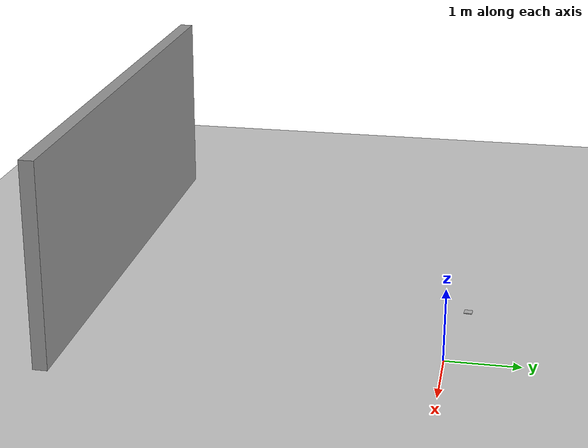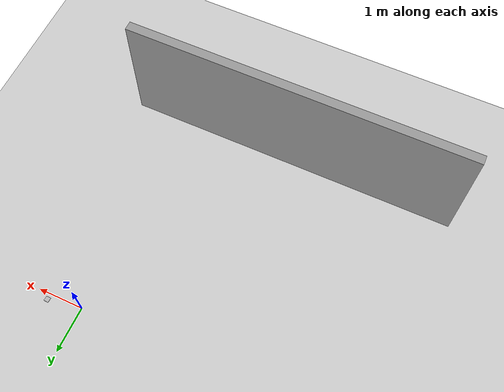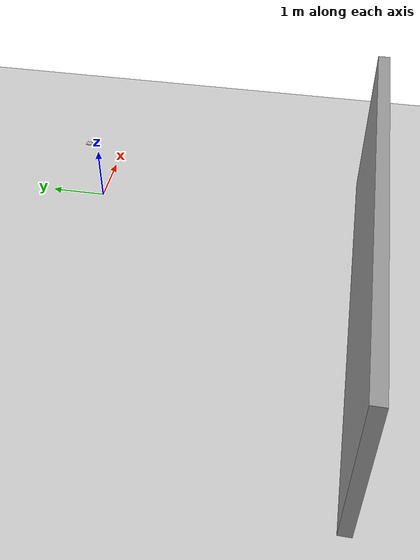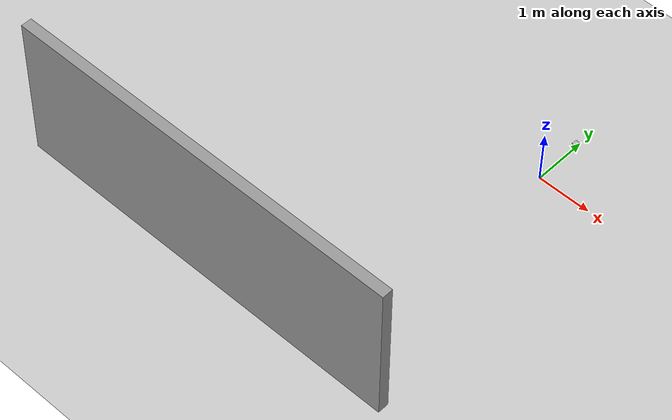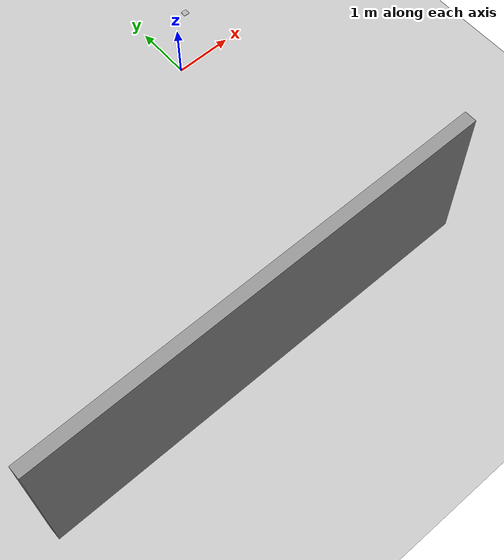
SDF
<?xml version="1.0"?>
<sdf version="1.4">
  <world name="default">
    <light name='sun' type='directional'>
      <cast_shadows>1</cast_shadows>
      <pose>0 0 10 0 -0 0</pose>
      <diffuse>0.8 0.8 0.8 1</diffuse>
      <specular>0.2 0.2 0.2 1</specular>
      <attenuation>
        <range>1000</range>
        <constant>0.9</constant>
        <linear>0.01</linear>
        <quadratic>0.001</quadratic>
      </attenuation>
      <direction>-0.5 0.1 -0.9</direction>
    </light>
    <model name='ground_plane'>
      <static>1</static>
      <link name='link'>
        <collision name='collision'>
          <geometry>
            <plane>
              <normal>0 0 1</normal>
              <size>100 100</size>
            </plane>
          </geometry>
          <surface>
            <friction>
              <ode>
                <mu>100</mu>
                <mu2>50</mu2>
              </ode>
            </friction>
            <bounce/>
            <contact>
              <ode/>
            </contact>
          </surface>
          <max_contacts>10</max_contacts>
        </collision>
        <visual name='visual'>
          <cast_shadows>0</cast_shadows>
          <geometry>
            <plane>
              <normal>0 0 1</normal>
              <size>100 100</size>
            </plane>
          </geometry>
          <material>
            <script>
              <uri>file://media/materials/scripts/gazebo.material</uri>
              <name>Gazebo/Grey</name>
            </script>
          </material>
        </visual>
        <velocity_decay>
          <linear>0</linear>
          <angular>0</angular>
        </velocity_decay>
        <self_collide>0</self_collide>
        <kinematic>0</kinematic>
        <gravity>1</gravity>
      </link>
    </model>
    <physics type='ode'>
      <max_step_size>0.001</max_step_size>
      <real_time_factor>1</real_time_factor>
      <real_time_update_rate>1000</real_time_update_rate>
      <gravity>0 0 -9.8</gravity>
    </physics>
    <scene>
      <ambient>0.4 0.4 0.4 1</ambient>
      <background>0.7 0.7 0.7 1</background>
      <shadows>1</shadows>
    </scene>
    <spherical_coordinates>
      <surface_model>EARTH_WGS84</surface_model>
      <latitude_deg>0</latitude_deg>
      <longitude_deg>0</longitude_deg>
      <elevation>0</elevation>
      <heading_deg>0</heading_deg>
    </spherical_coordinates>
    <model name='grey_wall'>
      <static>1</static>
      <link name='link'>
        <pose>0 0 1.4 0 -0 0</pose>
        <collision name='collision'>
          <geometry>
            <box>
              <size>7.5 0.2 2.8</size>
            </box>
          </geometry>
          <max_contacts>10</max_contacts>
          <surface>
            <bounce/>
            <friction>
              <ode/>
            </friction>
            <contact>
              <ode/>
            </contact>
          </surface>
        </collision>
        <visual name='visual'>
          <cast_shadows>0</cast_shadows>
          <geometry>
            <box>
              <size>7.5 0.2 2.8</size>
            </box>
          </geometry>
          <material>
            <script>
              <uri>model://grey_wall/materials/scripts</uri>
              <uri>model://grey_wall/materials/textures</uri>
              <name>vrc/grey_wall</name>
            </script>
          </material>
        </visual>
        <velocity_decay>
          <linear>0</linear>
          <angular>0</angular>
        </velocity_decay>
        <self_collide>0</self_collide>
        <kinematic>0</kinematic>
        <gravity>1</gravity>
      </link>
      <pose>-2.53262 -5 0 0 -0 0</pose>
    </model>
    <model name="aruco_tag">
      <pose>0.4 0.3 0.9  0 0 1.5</pose>
      <static>true</static>
      <link name="body">
        <visual name="visual">
          <geometry>
            <mesh>
              <uri>model://aruco_tag/meshes/arucotag1.dae</uri>
            </mesh>
          </geometry>
        </visual>
      </link>
    </model>
  </world>
</sdf>
